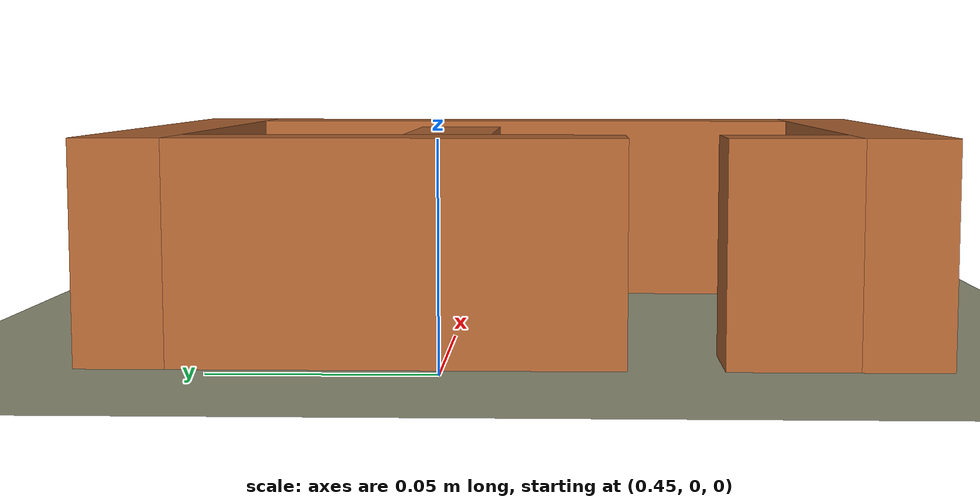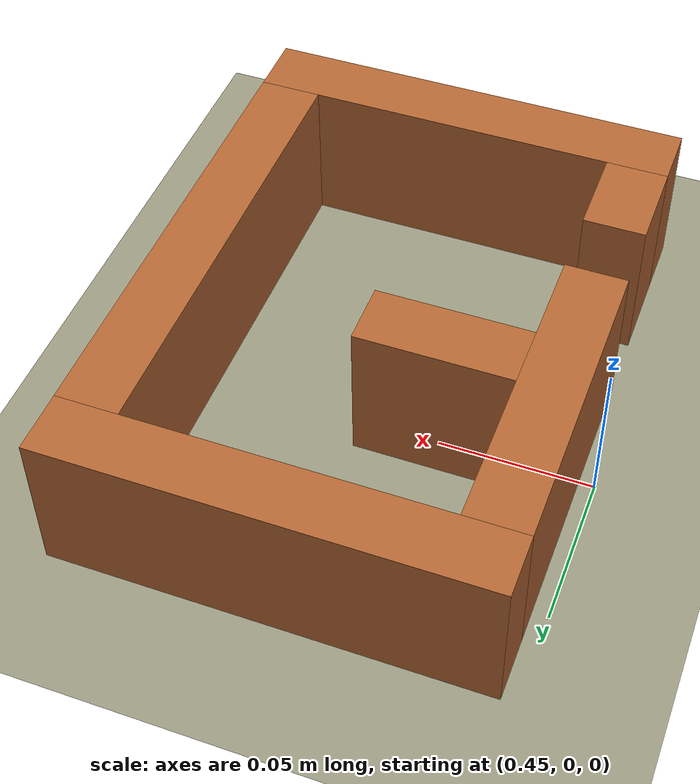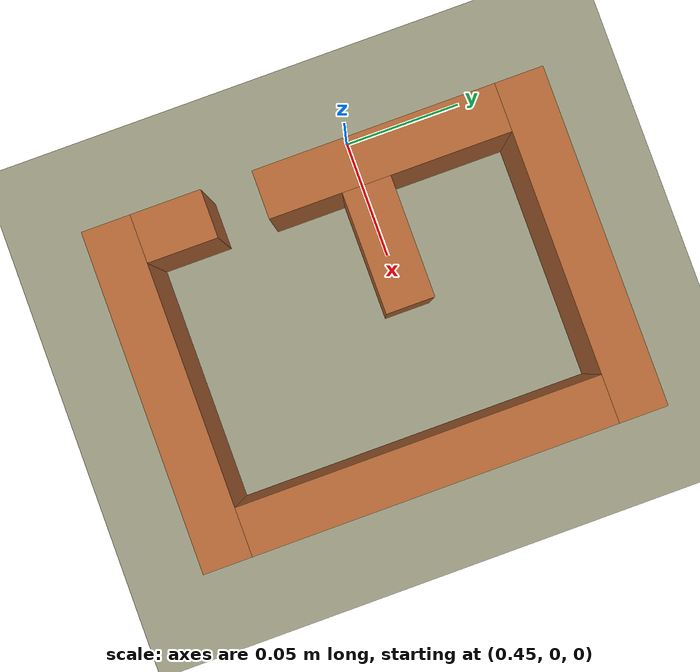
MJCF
<mujoco model='sawyer'>
    <compiler angle='radian' coordinate='local' />
	<option collision='all' impratio='5' cone='elliptic' timestep='0.001' gravity='0 0 -9.8' viscosity='0' iterations='20' />
    <size njmax='1500' nconmax='300' />

	<!--  ================= Visual Elements ================= /-->
	<asset>
		<material name='MatGnd' specular='.3' shininess='.3' reflectance='0.3' rgba='.5 .55 .5 1'/>
	</asset>

	<!--  ================= Physical Properties ================= /-->
	<default>
		<geom solref='0.01 1' solimp='0.95 0.95 0.01' condim='4'/>

		<default class='table'>
			<geom material='MatGnd' rgba='.6 .6 .5 1' solref='0.01 1' solimp='0.95 0.98 0.001' contype='1' condim='1' conaffinity='1' />
		</default>

		<default class='obstacle'>
			<geom material='MatGnd' rgba='.7 .4 .2 1' solref='0.01 1' solimp='0.95 0.98 0.001' contype='1' condim='1' conaffinity='1' />
		</default>

		<default class='object'>
			<geom rgba='0.4 0.5 0.9 1' solmix='0' density='400'/>
		</default>
	</default>

	<!--  ================= Kinematic Tree ================= /-->
    <worldbody>
		<light directional='true' cutoff='40' exponent='10' diffuse='.4 .4 .4' specular='.7 .7 .7' pos='0.9 0 1.5' dir='0 0 -1'/>

		<!--  ================= Table ================= /-->
		<geom name='tableTop' material='MatGnd' type='plane' pos='0.6 0 0' size='0.4 0.6 0.5' class='table'/>

		<body name='shift'>
			<!--  ================= Object ================= /-->
			<body name='object' pos='0.6 0 0.015' quat='1 0 0 0'>
			</body>

			<!--  ================= Obstacle ================= /-->
			<body name='wall' pos='0.6 0 0.025' quat='1 0 0 0'>
				<geom type='box' class='obstacle' size='0.025 0.01 0.025' pos='-0.1 0 0'/>
				<geom type='box' class='obstacle' size='0.01 0.05 0.025' pos='-0.135 0.01 0'/>
				<geom type='box' class='obstacle' size='0.07 0.01 0.025' pos='-0.075 0.07 0'/>
				<geom type='box' class='obstacle' size='0.07 0.01 0.025' pos='-0.075 -0.1 0'/>
				<geom type='box' class='obstacle' size='0.01 0.075 0.025' pos='-0.015 -0.015 0'/>
				<geom type='box' class='obstacle' size='0.01 0.0145 0.025' pos='-0.135 -0.0755 0'/>
			</body>
		</body>
    </worldbody>

	<!--  ================= Sensors ================= /-->
	<sensor>
		<framepos name='obj_p' objtype='body' objname='object' />
		<framequat name='obj_r' objtype='body' objname='object' />
	</sensor>
</mujoco>
